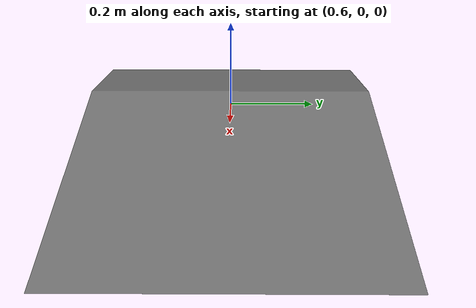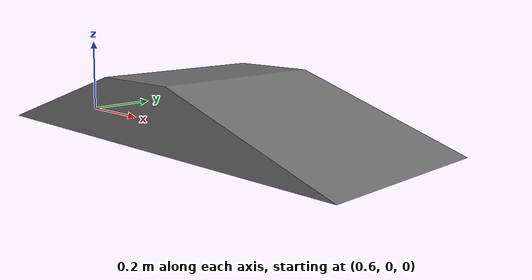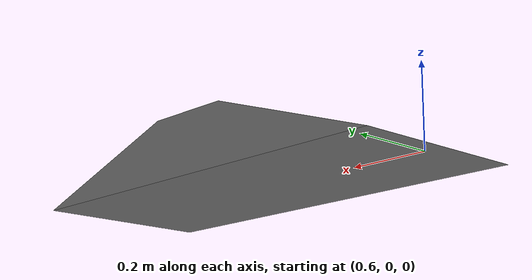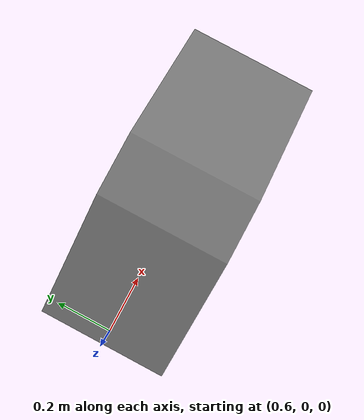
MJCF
<mujoco model="ramp">

    <asset>
        <mesh name="ramp_mesh" file="../assets/ramp.obj" scale="0.01 0.01 0.01"/>
    </asset>

    <worldbody>
        <body name="ramp" pos="1.10 -0.225 0">
            <geom name="ramp_body" type="mesh" mesh="ramp_mesh" rgba="0.45 0.45 0.45 1"/>
        </body>
    </worldbody>

</mujoco>
